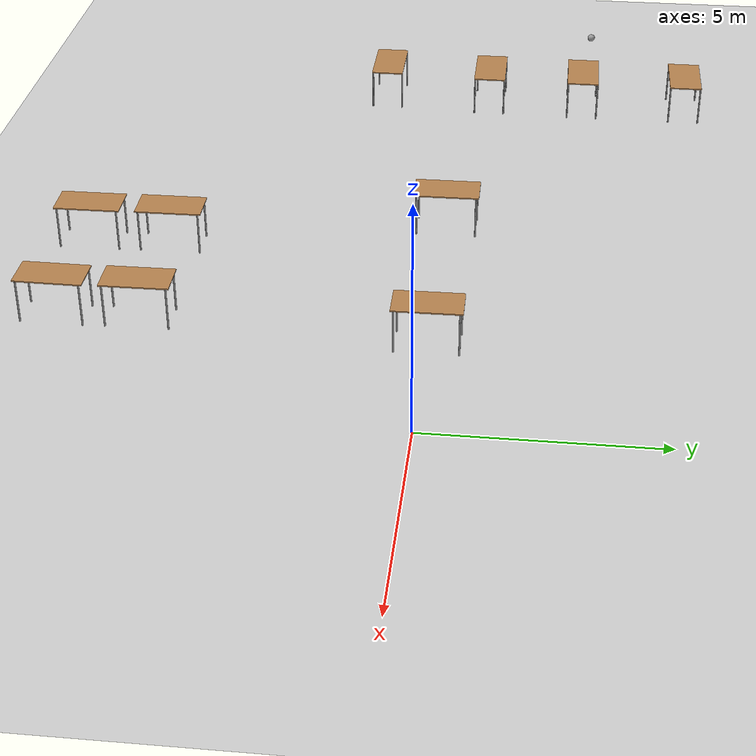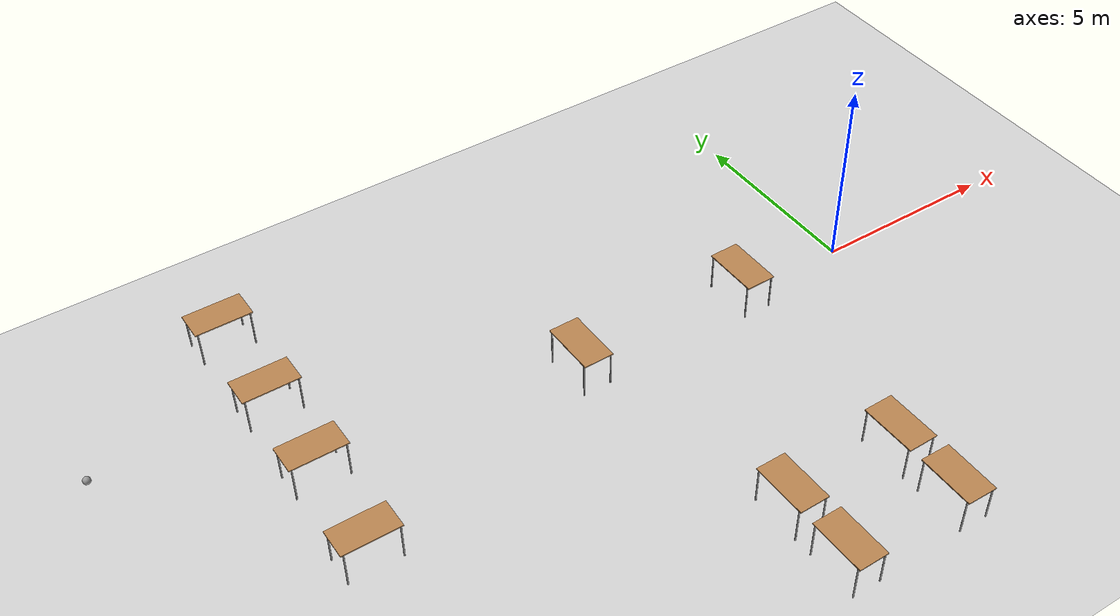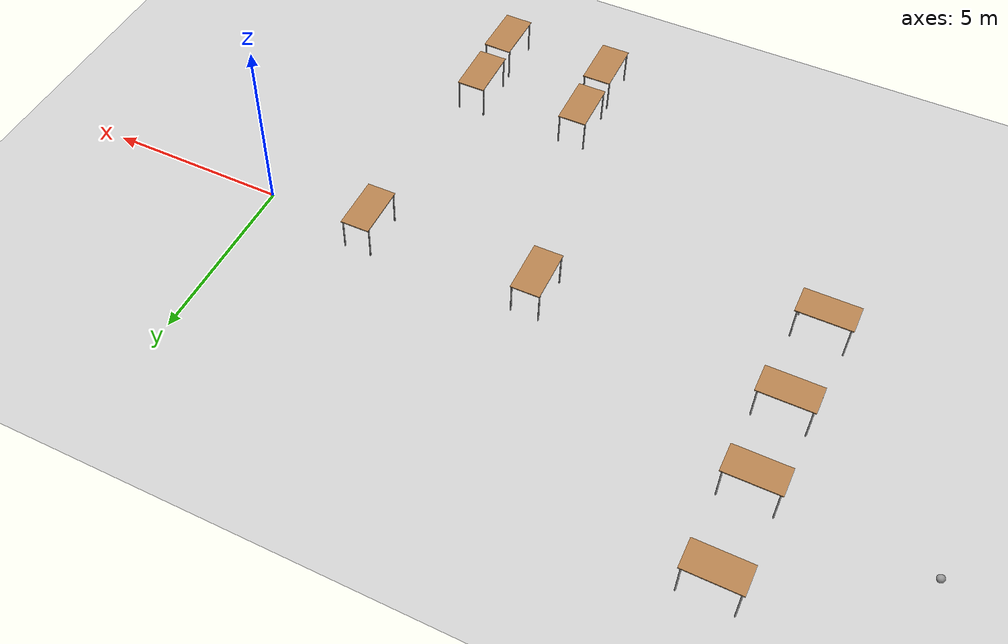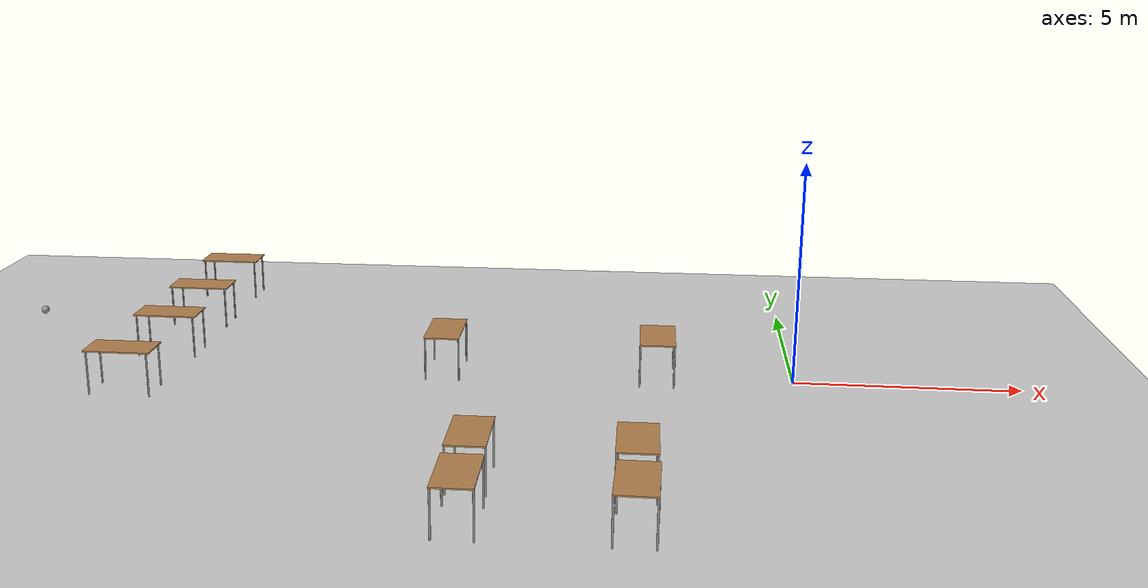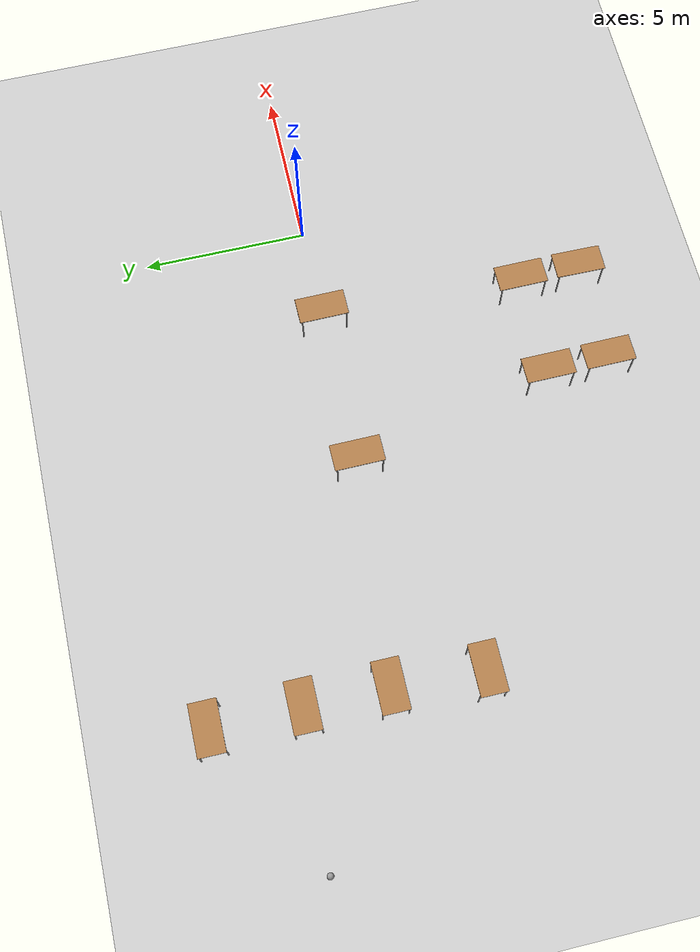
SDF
<sdf version="1.7">
 <world name="default">
  <model name="ground_plane">
   <static>1</static>
   <link name="link">
    <collision name="collision">
     <geometry><plane><normal>0 0 1</normal><size>100 100</size></plane></geometry>
     <surface><friction><ode><mu>100</mu><mu2>50</mu2></ode></friction></surface>
    </collision>
    <visual name="visual">
     <cast_shadows>0</cast_shadows>
     <geometry><plane><normal>0 0 1</normal><size>100 100</size></plane></geometry>
     <material>
      <script><uri>file://media/materials/scripts/gazebo.material</uri><name>Gazebo/Grey</name></script>
     </material>
    </visual>
   </link>
  </model>
  <model name="table">
   <static>1</static>
   <link name="link">
    <collision name="surface">
     <pose>0 0 1 0 -0 0</pose>
     <geometry><box><size>1.5 0.8 0.03</size></box></geometry>
     <surface><friction><ode><mu>0.6</mu><mu2>0.6</mu2></ode></friction></surface>
    </collision>
    <visual name="visual1">
     <pose>0 0 1 0 -0 0</pose>
     <geometry><box><size>1.5 0.8 0.03</size></box></geometry>
     <material>
      <script><uri>file://media/materials/scripts/gazebo.material</uri><name>Gazebo/Wood</name></script>
     </material>
    </visual>
    <collision name="front_left_leg">
     <pose>0.68 0.38 0.5 0 -0 0</pose>
     <geometry><cylinder><radius>0.02</radius><length>1</length></cylinder></geometry>
    </collision>
    <visual name="front_left_leg">
     <pose>0.68 0.38 0.5 0 -0 0</pose>
     <geometry><cylinder><radius>0.02</radius><length>1</length></cylinder></geometry>
     <material>
      <script><uri>file://media/materials/scripts/gazebo.material</uri><name>Gazebo/Grey</name></script>
     </material>
    </visual>
    <collision name="front_right_leg">
     <pose>0.68 -0.38 0.5 0 -0 0</pose>
     <geometry><cylinder><radius>0.02</radius><length>1</length></cylinder></geometry>
    </collision>
    <visual name="front_right_leg">
     <pose>0.68 -0.38 0.5 0 -0 0</pose>
     <geometry><cylinder><radius>0.02</radius><length>1</length></cylinder></geometry>
     <material>
      <script><uri>file://media/materials/scripts/gazebo.material</uri><name>Gazebo/Grey</name></script>
     </material>
    </visual>
    <collision name="back_right_leg">
     <pose>-0.68 -0.38 0.5 0 -0 0</pose>
     <geometry><cylinder><radius>0.02</radius><length>1</length></cylinder></geometry>
    </collision>
    <visual name="back_right_leg">
     <pose>-0.68 -0.38 0.5 0 -0 0</pose>
     <geometry><cylinder><radius>0.02</radius><length>1</length></cylinder></geometry>
     <material>
      <script><uri>file://media/materials/scripts/gazebo.material</uri><name>Gazebo/Grey</name></script>
     </material>
    </visual>
    <collision name="back_left_leg">
     <pose>-0.68 0.38 0.5 0 -0 0</pose>
     <geometry><cylinder><radius>0.02</radius><length>1</length></cylinder></geometry>
    </collision>
    <visual name="back_left_leg">
     <pose>-0.68 0.38 0.5 0 -0 0</pose>
     <geometry><cylinder><radius>0.02</radius><length>1</length></cylinder></geometry>
     <material>
      <script><uri>file://media/materials/scripts/gazebo.material</uri><name>Gazebo/Grey</name></script>
     </material>
    </visual>
   </link>
   <pose>-14.64 5.75533 0 0 -0 0</pose>
  </model>
  <model name="table_clone">
   <static>1</static>
   <link name="link">
    <collision name="surface">
     <pose>0 0 1 0 -0 0</pose>
     <geometry><box><size>1.5 0.8 0.03</size></box></geometry>
     <surface><friction><ode><mu>0.6</mu><mu2>0.6</mu2></ode></friction></surface>
    </collision>
    <visual name="visual1">
     <pose>0 0 1 0 -0 0</pose>
     <geometry><box><size>1.5 0.8 0.03</size></box></geometry>
     <material>
      <script><uri>file://media/materials/scripts/gazebo.material</uri><name>Gazebo/Wood</name></script>
     </material>
    </visual>
    <collision name="front_left_leg">
     <pose>0.68 0.38 0.5 0 -0 0</pose>
     <geometry><cylinder><radius>0.02</radius><length>1</length></cylinder></geometry>
    </collision>
    <visual name="front_left_leg">
     <pose>0.68 0.38 0.5 0 -0 0</pose>
     <geometry><cylinder><radius>0.02</radius><length>1</length></cylinder></geometry>
     <material>
      <script><uri>file://media/materials/scripts/gazebo.material</uri><name>Gazebo/Grey</name></script>
     </material>
    </visual>
    <collision name="front_right_leg">
     <pose>0.68 -0.38 0.5 0 -0 0</pose>
     <geometry><cylinder><radius>0.02</radius><length>1</length></cylinder></geometry>
    </collision>
    <visual name="front_right_leg">
     <pose>0.68 -0.38 0.5 0 -0 0</pose>
     <geometry><cylinder><radius>0.02</radius><length>1</length></cylinder></geometry>
     <material>
      <script><uri>file://media/materials/scripts/gazebo.material</uri><name>Gazebo/Grey</name></script>
     </material>
    </visual>
    <collision name="back_right_leg">
     <pose>-0.68 -0.38 0.5 0 -0 0</pose>
     <geometry><cylinder><radius>0.02</radius><length>1</length></cylinder></geometry>
    </collision>
    <visual name="back_right_leg">
     <pose>-0.68 -0.38 0.5 0 -0 0</pose>
     <geometry><cylinder><radius>0.02</radius><length>1</length></cylinder></geometry>
     <material>
      <script><uri>file://media/materials/scripts/gazebo.material</uri><name>Gazebo/Grey</name></script>
     </material>
    </visual>
    <collision name="back_left_leg">
     <pose>-0.68 0.38 0.5 0 -0 0</pose>
     <geometry><cylinder><radius>0.02</radius><length>1</length></cylinder></geometry>
    </collision>
    <visual name="back_left_leg">
     <pose>-0.68 0.38 0.5 0 -0 0</pose>
     <geometry><cylinder><radius>0.02</radius><length>1</length></cylinder></geometry>
     <material>
      <script><uri>file://media/materials/scripts/gazebo.material</uri><name>Gazebo/Grey</name></script>
     </material>
    </visual>
   </link>
   <pose>-14.6419 3.11969 0 0 -0 0</pose>
  </model>
  <model name="table_clone_0">
   <static>1</static>
   <link name="link">
    <collision name="surface">
     <pose>0 0 1 0 -0 0</pose>
     <geometry><box><size>1.5 0.8 0.03</size></box></geometry>
     <surface><friction><ode><mu>0.6</mu><mu2>0.6</mu2></ode></friction></surface>
    </collision>
    <visual name="visual1">
     <pose>0 0 1 0 -0 0</pose>
     <geometry><box><size>1.5 0.8 0.03</size></box></geometry>
     <material>
      <script><uri>file://media/materials/scripts/gazebo.material</uri><name>Gazebo/Wood</name></script>
     </material>
    </visual>
    <collision name="front_left_leg">
     <pose>0.68 0.38 0.5 0 -0 0</pose>
     <geometry><cylinder><radius>0.02</radius><length>1</length></cylinder></geometry>
    </collision>
    <visual name="front_left_leg">
     <pose>0.68 0.38 0.5 0 -0 0</pose>
     <geometry><cylinder><radius>0.02</radius><length>1</length></cylinder></geometry>
     <material>
      <script><uri>file://media/materials/scripts/gazebo.material</uri><name>Gazebo/Grey</name></script>
     </material>
    </visual>
    <collision name="front_right_leg">
     <pose>0.68 -0.38 0.5 0 -0 0</pose>
     <geometry><cylinder><radius>0.02</radius><length>1</length></cylinder></geometry>
    </collision>
    <visual name="front_right_leg">
     <pose>0.68 -0.38 0.5 0 -0 0</pose>
     <geometry><cylinder><radius>0.02</radius><length>1</length></cylinder></geometry>
     <material>
      <script><uri>file://media/materials/scripts/gazebo.material</uri><name>Gazebo/Grey</name></script>
     </material>
    </visual>
    <collision name="back_right_leg">
     <pose>-0.68 -0.38 0.5 0 -0 0</pose>
     <geometry><cylinder><radius>0.02</radius><length>1</length></cylinder></geometry>
    </collision>
    <visual name="back_right_leg">
     <pose>-0.68 -0.38 0.5 0 -0 0</pose>
     <geometry><cylinder><radius>0.02</radius><length>1</length></cylinder></geometry>
     <material>
      <script><uri>file://media/materials/scripts/gazebo.material</uri><name>Gazebo/Grey</name></script>
     </material>
    </visual>
    <collision name="back_left_leg">
     <pose>-0.68 0.38 0.5 0 -0 0</pose>
     <geometry><cylinder><radius>0.02</radius><length>1</length></cylinder></geometry>
    </collision>
    <visual name="back_left_leg">
     <pose>-0.68 0.38 0.5 0 -0 0</pose>
     <geometry><cylinder><radius>0.02</radius><length>1</length></cylinder></geometry>
     <material>
      <script><uri>file://media/materials/scripts/gazebo.material</uri><name>Gazebo/Grey</name></script>
     </material>
    </visual>
   </link>
   <pose>-14.6602 0.691653 0 0 -0 0</pose>
  </model>
  <model name="table_clone_1">
   <static>1</static>
   <link name="link">
    <collision name="surface">
     <pose>0 0 1 0 -0 0</pose>
     <geometry><box><size>1.5 0.8 0.03</size></box></geometry>
     <surface><friction><ode><mu>0.6</mu><mu2>0.6</mu2></ode></friction></surface>
    </collision>
    <visual name="visual1">
     <pose>0 0 1 0 -0 0</pose>
     <geometry><box><size>1.5 0.8 0.03</size></box></geometry>
     <material>
      <script><uri>file://media/materials/scripts/gazebo.material</uri><name>Gazebo/Wood</name></script>
     </material>
    </visual>
    <collision name="front_left_leg">
     <pose>0.68 0.38 0.5 0 -0 0</pose>
     <geometry><cylinder><radius>0.02</radius><length>1</length></cylinder></geometry>
    </collision>
    <visual name="front_left_leg">
     <pose>0.68 0.38 0.5 0 -0 0</pose>
     <geometry><cylinder><radius>0.02</radius><length>1</length></cylinder></geometry>
     <material>
      <script><uri>file://media/materials/scripts/gazebo.material</uri><name>Gazebo/Grey</name></script>
     </material>
    </visual>
    <collision name="front_right_leg">
     <pose>0.68 -0.38 0.5 0 -0 0</pose>
     <geometry><cylinder><radius>0.02</radius><length>1</length></cylinder></geometry>
    </collision>
    <visual name="front_right_leg">
     <pose>0.68 -0.38 0.5 0 -0 0</pose>
     <geometry><cylinder><radius>0.02</radius><length>1</length></cylinder></geometry>
     <material>
      <script><uri>file://media/materials/scripts/gazebo.material</uri><name>Gazebo/Grey</name></script>
     </material>
    </visual>
    <collision name="back_right_leg">
     <pose>-0.68 -0.38 0.5 0 -0 0</pose>
     <geometry><cylinder><radius>0.02</radius><length>1</length></cylinder></geometry>
    </collision>
    <visual name="back_right_leg">
     <pose>-0.68 -0.38 0.5 0 -0 0</pose>
     <geometry><cylinder><radius>0.02</radius><length>1</length></cylinder></geometry>
     <material>
      <script><uri>file://media/materials/scripts/gazebo.material</uri><name>Gazebo/Grey</name></script>
     </material>
    </visual>
    <collision name="back_left_leg">
     <pose>-0.68 0.38 0.5 0 -0 0</pose>
     <geometry><cylinder><radius>0.02</radius><length>1</length></cylinder></geometry>
    </collision>
    <visual name="back_left_leg">
     <pose>-0.68 0.38 0.5 0 -0 0</pose>
     <geometry><cylinder><radius>0.02</radius><length>1</length></cylinder></geometry>
     <material>
      <script><uri>file://media/materials/scripts/gazebo.material</uri><name>Gazebo/Grey</name></script>
     </material>
    </visual>
   </link>
   <pose>-14.7946 -2.00538 0 0 -0 0</pose>
  </model>
  <model name="table_clone_2">
   <static>1</static>
   <link name="link">
    <collision name="surface">
     <pose>0 0 1 0 -0 0</pose>
     <geometry><box><size>1.5 0.8 0.03</size></box></geometry>
     <surface><friction><ode><mu>0.6</mu><mu2>0.6</mu2></ode></friction></surface>
    </collision>
    <visual name="visual1">
     <pose>0 0 1 0 -0 0</pose>
     <geometry><box><size>1.5 0.8 0.03</size></box></geometry>
     <material>
      <script><uri>file://media/materials/scripts/gazebo.material</uri><name>Gazebo/Wood</name></script>
     </material>
    </visual>
    <collision name="front_left_leg">
     <pose>0.68 0.38 0.5 0 -0 0</pose>
     <geometry><cylinder><radius>0.02</radius><length>1</length></cylinder></geometry>
    </collision>
    <visual name="front_left_leg">
     <pose>0.68 0.38 0.5 0 -0 0</pose>
     <geometry><cylinder><radius>0.02</radius><length>1</length></cylinder></geometry>
     <material>
      <script><uri>file://media/materials/scripts/gazebo.material</uri><name>Gazebo/Grey</name></script>
     </material>
    </visual>
    <collision name="front_right_leg">
     <pose>0.68 -0.38 0.5 0 -0 0</pose>
     <geometry><cylinder><radius>0.02</radius><length>1</length></cylinder></geometry>
    </collision>
    <visual name="front_right_leg">
     <pose>0.68 -0.38 0.5 0 -0 0</pose>
     <geometry><cylinder><radius>0.02</radius><length>1</length></cylinder></geometry>
     <material>
      <script><uri>file://media/materials/scripts/gazebo.material</uri><name>Gazebo/Grey</name></script>
     </material>
    </visual>
    <collision name="back_right_leg">
     <pose>-0.68 -0.38 0.5 0 -0 0</pose>
     <geometry><cylinder><radius>0.02</radius><length>1</length></cylinder></geometry>
    </collision>
    <visual name="back_right_leg">
     <pose>-0.68 -0.38 0.5 0 -0 0</pose>
     <geometry><cylinder><radius>0.02</radius><length>1</length></cylinder></geometry>
     <material>
      <script><uri>file://media/materials/scripts/gazebo.material</uri><name>Gazebo/Grey</name></script>
     </material>
    </visual>
    <collision name="back_left_leg">
     <pose>-0.68 0.38 0.5 0 -0 0</pose>
     <geometry><cylinder><radius>0.02</radius><length>1</length></cylinder></geometry>
    </collision>
    <visual name="back_left_leg">
     <pose>-0.68 0.38 0.5 0 -0 0</pose>
     <geometry><cylinder><radius>0.02</radius><length>1</length></cylinder></geometry>
     <material>
      <script><uri>file://media/materials/scripts/gazebo.material</uri><name>Gazebo/Grey</name></script>
     </material>
    </visual>
   </link>
   <pose>-6.48162 -7.94294 0 0 0 -1.56333</pose>
  </model>
  <model name="table_clone_3">
   <static>1</static>
   <link name="link">
    <collision name="surface">
     <pose>0 0 1 0 -0 0</pose>
     <geometry><box><size>1.5 0.8 0.03</size></box></geometry>
     <surface><friction><ode><mu>0.6</mu><mu2>0.6</mu2></ode></friction></surface>
    </collision>
    <visual name="visual1">
     <pose>0 0 1 0 -0 0</pose>
     <geometry><box><size>1.5 0.8 0.03</size></box></geometry>
     <material>
      <script><uri>file://media/materials/scripts/gazebo.material</uri><name>Gazebo/Wood</name></script>
     </material>
    </visual>
    <collision name="front_left_leg">
     <pose>0.68 0.38 0.5 0 -0 0</pose>
     <geometry><cylinder><radius>0.02</radius><length>1</length></cylinder></geometry>
    </collision>
    <visual name="front_left_leg">
     <pose>0.68 0.38 0.5 0 -0 0</pose>
     <geometry><cylinder><radius>0.02</radius><length>1</length></cylinder></geometry>
     <material>
      <script><uri>file://media/materials/scripts/gazebo.material</uri><name>Gazebo/Grey</name></script>
     </material>
    </visual>
    <collision name="front_right_leg">
     <pose>0.68 -0.38 0.5 0 -0 0</pose>
     <geometry><cylinder><radius>0.02</radius><length>1</length></cylinder></geometry>
    </collision>
    <visual name="front_right_leg">
     <pose>0.68 -0.38 0.5 0 -0 0</pose>
     <geometry><cylinder><radius>0.02</radius><length>1</length></cylinder></geometry>
     <material>
      <script><uri>file://media/materials/scripts/gazebo.material</uri><name>Gazebo/Grey</name></script>
     </material>
    </visual>
    <collision name="back_right_leg">
     <pose>-0.68 -0.38 0.5 0 -0 0</pose>
     <geometry><cylinder><radius>0.02</radius><length>1</length></cylinder></geometry>
    </collision>
    <visual name="back_right_leg">
     <pose>-0.68 -0.38 0.5 0 -0 0</pose>
     <geometry><cylinder><radius>0.02</radius><length>1</length></cylinder></geometry>
     <material>
      <script><uri>file://media/materials/scripts/gazebo.material</uri><name>Gazebo/Grey</name></script>
     </material>
    </visual>
    <collision name="back_left_leg">
     <pose>-0.68 0.38 0.5 0 -0 0</pose>
     <geometry><cylinder><radius>0.02</radius><length>1</length></cylinder></geometry>
    </collision>
    <visual name="back_left_leg">
     <pose>-0.68 0.38 0.5 0 -0 0</pose>
     <geometry><cylinder><radius>0.02</radius><length>1</length></cylinder></geometry>
     <material>
      <script><uri>file://media/materials/scripts/gazebo.material</uri><name>Gazebo/Grey</name></script>
     </material>
    </visual>
   </link>
   <pose>-3.36222 -7.92805 0 0 0 -1.58523</pose>
  </model>
  <model name="table_clone_5_clone_1">
   <static>1</static>
   <link name="link">
    <collision name="surface">
     <pose>0 0 1 0 -0 0</pose>
     <geometry><box><size>1.5 0.8 0.03</size></box></geometry>
     <surface><friction><ode><mu>0.6</mu><mu2>0.6</mu2></ode></friction></surface>
    </collision>
    <visual name="visual1">
     <pose>0 0 1 0 -0 0</pose>
     <geometry><box><size>1.5 0.8 0.03</size></box></geometry>
     <material>
      <script><uri>file://media/materials/scripts/gazebo.material</uri><name>Gazebo/Wood</name></script>
     </material>
    </visual>
    <collision name="front_left_leg">
     <pose>0.68 0.38 0.5 0 -0 0</pose>
     <geometry><cylinder><radius>0.02</radius><length>1</length></cylinder></geometry>
    </collision>
    <visual name="front_left_leg">
     <pose>0.68 0.38 0.5 0 -0 0</pose>
     <geometry><cylinder><radius>0.02</radius><length>1</length></cylinder></geometry>
     <material>
      <script><uri>file://media/materials/scripts/gazebo.material</uri><name>Gazebo/Grey</name></script>
     </material>
    </visual>
    <collision name="front_right_leg">
     <pose>0.68 -0.38 0.5 0 -0 0</pose>
     <geometry><cylinder><radius>0.02</radius><length>1</length></cylinder></geometry>
    </collision>
    <visual name="front_right_leg">
     <pose>0.68 -0.38 0.5 0 -0 0</pose>
     <geometry><cylinder><radius>0.02</radius><length>1</length></cylinder></geometry>
     <material>
      <script><uri>file://media/materials/scripts/gazebo.material</uri><name>Gazebo/Grey</name></script>
     </material>
    </visual>
    <collision name="back_right_leg">
     <pose>-0.68 -0.38 0.5 0 -0 0</pose>
     <geometry><cylinder><radius>0.02</radius><length>1</length></cylinder></geometry>
    </collision>
    <visual name="back_right_leg">
     <pose>-0.68 -0.38 0.5 0 -0 0</pose>
     <geometry><cylinder><radius>0.02</radius><length>1</length></cylinder></geometry>
     <material>
      <script><uri>file://media/materials/scripts/gazebo.material</uri><name>Gazebo/Grey</name></script>
     </material>
    </visual>
    <collision name="back_left_leg">
     <pose>-0.68 0.38 0.5 0 -0 0</pose>
     <geometry><cylinder><radius>0.02</radius><length>1</length></cylinder></geometry>
    </collision>
    <visual name="back_left_leg">
     <pose>-0.68 0.38 0.5 0 -0 0</pose>
     <geometry><cylinder><radius>0.02</radius><length>1</length></cylinder></geometry>
     <material>
      <script><uri>file://media/materials/scripts/gazebo.material</uri><name>Gazebo/Grey</name></script>
     </material>
    </visual>
   </link>
   <pose>-3.38591 -6.10217 0 0 0 -1.56324</pose>
  </model>
  <model name="table_clone_5_clone_2">
   <static>1</static>
   <link name="link">
    <collision name="surface">
     <pose>0 0 1 0 -0 0</pose>
     <geometry><box><size>1.5 0.8 0.03</size></box></geometry>
     <surface><friction><ode><mu>0.6</mu><mu2>0.6</mu2></ode></friction></surface>
    </collision>
    <visual name="visual1">
     <pose>0 0 1 0 -0 0</pose>
     <geometry><box><size>1.5 0.8 0.03</size></box></geometry>
     <material>
      <script><uri>file://media/materials/scripts/gazebo.material</uri><name>Gazebo/Wood</name></script>
     </material>
    </visual>
    <collision name="front_left_leg">
     <pose>0.68 0.38 0.5 0 -0 0</pose>
     <geometry><cylinder><radius>0.02</radius><length>1</length></cylinder></geometry>
    </collision>
    <visual name="front_left_leg">
     <pose>0.68 0.38 0.5 0 -0 0</pose>
     <geometry><cylinder><radius>0.02</radius><length>1</length></cylinder></geometry>
     <material>
      <script><uri>file://media/materials/scripts/gazebo.material</uri><name>Gazebo/Grey</name></script>
     </material>
    </visual>
    <collision name="front_right_leg">
     <pose>0.68 -0.38 0.5 0 -0 0</pose>
     <geometry><cylinder><radius>0.02</radius><length>1</length></cylinder></geometry>
    </collision>
    <visual name="front_right_leg">
     <pose>0.68 -0.38 0.5 0 -0 0</pose>
     <geometry><cylinder><radius>0.02</radius><length>1</length></cylinder></geometry>
     <material>
      <script><uri>file://media/materials/scripts/gazebo.material</uri><name>Gazebo/Grey</name></script>
     </material>
    </visual>
    <collision name="back_right_leg">
     <pose>-0.68 -0.38 0.5 0 -0 0</pose>
     <geometry><cylinder><radius>0.02</radius><length>1</length></cylinder></geometry>
    </collision>
    <visual name="back_right_leg">
     <pose>-0.68 -0.38 0.5 0 -0 0</pose>
     <geometry><cylinder><radius>0.02</radius><length>1</length></cylinder></geometry>
     <material>
      <script><uri>file://media/materials/scripts/gazebo.material</uri><name>Gazebo/Grey</name></script>
     </material>
    </visual>
    <collision name="back_left_leg">
     <pose>-0.68 0.38 0.5 0 -0 0</pose>
     <geometry><cylinder><radius>0.02</radius><length>1</length></cylinder></geometry>
    </collision>
    <visual name="back_left_leg">
     <pose>-0.68 0.38 0.5 0 -0 0</pose>
     <geometry><cylinder><radius>0.02</radius><length>1</length></cylinder></geometry>
     <material>
      <script><uri>file://media/materials/scripts/gazebo.material</uri><name>Gazebo/Grey</name></script>
     </material>
    </visual>
   </link>
   <pose>-6.51259 -6.09178 0 0 0 -1.56324</pose>
  </model>
  <model name="table_clone_5_clone_clone_clone_2">
   <static>1</static>
   <link name="link">
    <collision name="surface">
     <pose>0 0 1 0 -0 0</pose>
     <geometry><box><size>1.5 0.8 0.03</size></box></geometry>
     <surface><friction><ode><mu>0.6</mu><mu2>0.6</mu2></ode></friction></surface>
    </collision>
    <visual name="visual1">
     <pose>0 0 1 0 -0 0</pose>
     <geometry><box><size>1.5 0.8 0.03</size></box></geometry>
     <material>
      <script><uri>file://media/materials/scripts/gazebo.material</uri><name>Gazebo/Wood</name></script>
     </material>
    </visual>
    <collision name="front_left_leg">
     <pose>0.68 0.38 0.5 0 -0 0</pose>
     <geometry><cylinder><radius>0.02</radius><length>1</length></cylinder></geometry>
    </collision>
    <visual name="front_left_leg">
     <pose>0.68 0.38 0.5 0 -0 0</pose>
     <geometry><cylinder><radius>0.02</radius><length>1</length></cylinder></geometry>
     <material>
      <script><uri>file://media/materials/scripts/gazebo.material</uri><name>Gazebo/Grey</name></script>
     </material>
    </visual>
    <collision name="front_right_leg">
     <pose>0.68 -0.38 0.5 0 -0 0</pose>
     <geometry><cylinder><radius>0.02</radius><length>1</length></cylinder></geometry>
    </collision>
    <visual name="front_right_leg">
     <pose>0.68 -0.38 0.5 0 -0 0</pose>
     <geometry><cylinder><radius>0.02</radius><length>1</length></cylinder></geometry>
     <material>
      <script><uri>file://media/materials/scripts/gazebo.material</uri><name>Gazebo/Grey</name></script>
     </material>
    </visual>
    <collision name="back_right_leg">
     <pose>-0.68 -0.38 0.5 0 -0 0</pose>
     <geometry><cylinder><radius>0.02</radius><length>1</length></cylinder></geometry>
    </collision>
    <visual name="back_right_leg">
     <pose>-0.68 -0.38 0.5 0 -0 0</pose>
     <geometry><cylinder><radius>0.02</radius><length>1</length></cylinder></geometry>
     <material>
      <script><uri>file://media/materials/scripts/gazebo.material</uri><name>Gazebo/Grey</name></script>
     </material>
    </visual>
    <collision name="back_left_leg">
     <pose>-0.68 0.38 0.5 0 -0 0</pose>
     <geometry><cylinder><radius>0.02</radius><length>1</length></cylinder></geometry>
    </collision>
    <visual name="back_left_leg">
     <pose>-0.68 0.38 0.5 0 -0 0</pose>
     <geometry><cylinder><radius>0.02</radius><length>1</length></cylinder></geometry>
     <material>
      <script><uri>file://media/materials/scripts/gazebo.material</uri><name>Gazebo/Grey</name></script>
     </material>
    </visual>
   </link>
   <pose>-3.05876 0.036965 0 0 0 -1.56324</pose>
  </model>
  <model name="table_clone_5_clone_clone_clone_3">
   <static>1</static>
   <link name="link">
    <collision name="surface">
     <pose>0 0 1 0 -0 0</pose>
     <geometry><box><size>1.5 0.8 0.03</size></box></geometry>
     <surface><friction><ode><mu>0.6</mu><mu2>0.6</mu2></ode></friction></surface>
    </collision>
    <visual name="visual1">
     <pose>0 0 1 0 -0 0</pose>
     <geometry><box><size>1.5 0.8 0.03</size></box></geometry>
     <material>
      <script><uri>file://media/materials/scripts/gazebo.material</uri><name>Gazebo/Wood</name></script>
     </material>
    </visual>
    <collision name="front_left_leg">
     <pose>0.68 0.38 0.5 0 -0 0</pose>
     <geometry><cylinder><radius>0.02</radius><length>1</length></cylinder></geometry>
    </collision>
    <visual name="front_left_leg">
     <pose>0.68 0.38 0.5 0 -0 0</pose>
     <geometry><cylinder><radius>0.02</radius><length>1</length></cylinder></geometry>
     <material>
      <script><uri>file://media/materials/scripts/gazebo.material</uri><name>Gazebo/Grey</name></script>
     </material>
    </visual>
    <collision name="front_right_leg">
     <pose>0.68 -0.38 0.5 0 -0 0</pose>
     <geometry><cylinder><radius>0.02</radius><length>1</length></cylinder></geometry>
    </collision>
    <visual name="front_right_leg">
     <pose>0.68 -0.38 0.5 0 -0 0</pose>
     <geometry><cylinder><radius>0.02</radius><length>1</length></cylinder></geometry>
     <material>
      <script><uri>file://media/materials/scripts/gazebo.material</uri><name>Gazebo/Grey</name></script>
     </material>
    </visual>
    <collision name="back_right_leg">
     <pose>-0.68 -0.38 0.5 0 -0 0</pose>
     <geometry><cylinder><radius>0.02</radius><length>1</length></cylinder></geometry>
    </collision>
    <visual name="back_right_leg">
     <pose>-0.68 -0.38 0.5 0 -0 0</pose>
     <geometry><cylinder><radius>0.02</radius><length>1</length></cylinder></geometry>
     <material>
      <script><uri>file://media/materials/scripts/gazebo.material</uri><name>Gazebo/Grey</name></script>
     </material>
    </visual>
    <collision name="back_left_leg">
     <pose>-0.68 0.38 0.5 0 -0 0</pose>
     <geometry><cylinder><radius>0.02</radius><length>1</length></cylinder></geometry>
    </collision>
    <visual name="back_left_leg">
     <pose>-0.68 0.38 0.5 0 -0 0</pose>
     <geometry><cylinder><radius>0.02</radius><length>1</length></cylinder></geometry>
     <material>
      <script><uri>file://media/materials/scripts/gazebo.material</uri><name>Gazebo/Grey</name></script>
     </material>
    </visual>
   </link>
   <pose>-7.89536 0.053453 0 0 0 -1.56324</pose>
  </model>
  <model name="ball">
   <link name="link_0">
    <inertial>
     <mass>1</mass>
     <inertia><ixx>0.1</ixx><ixy>0</ixy><ixz>0</ixz><iyy>0.1</iyy><iyz>0</iyz><izz>0.1</izz></inertia>
    </inertial>
    <visual name="visual">
     <geometry><sphere><radius>0.1</radius></sphere></geometry>
     <material>
      <lighting>1</lighting>
      <script><uri>file://media/materials/scripts/gazebo.material</uri><name>Gazebo/Grey</name></script>
      <shader type="pixel"><normal_map>__default__</normal_map></shader>
      <ambient>1 1 1 1</ambient>
      <diffuse>0.7 0.7 0.7 1</diffuse>
      <specular>0.01 0.01 0.01 1</specular>
      <emissive>0 0 0 1</emissive>
     </material>
    </visual>
    <collision name="collision">
     <geometry><sphere><radius>0.1</radius></sphere></geometry>
     <surface>
      <friction>
       <ode><mu>1</mu><mu2>1</mu2><fdir1>0 0 0</fdir1><slip1>0</slip1><slip2>0</slip2></ode>
       <torsional>
        <coefficient>1</coefficient>
        <patch_radius>0</patch_radius>
        <surface_radius>0</surface_radius>
        <use_patch_radius>1</use_patch_radius>
        <ode><slip>0</slip></ode>
       </torsional>
      </friction>
      <bounce><restitution_coefficient>0</restitution_coefficient><threshold>1e+06</threshold></bounce>
      <contact>
       <collide_without_contact>0</collide_without_contact>
       <collide_without_contact_bitmask>1</collide_without_contact_bitmask>
       <collide_bitmask>1</collide_bitmask>
       <ode>
        <soft_cfm>0</soft_cfm>
        <soft_erp>0.2</soft_erp>
        <kp>1e+13</kp>
        <kd>1</kd>
        <max_vel>0.01</max_vel>
        <min_depth>0</min_depth>
       </ode>
       <bullet>
        <split_impulse>1</split_impulse>
        <split_impulse_penetration_threshold>-0.01</split_impulse_penetration_threshold>
        <soft_cfm>0</soft_cfm>
        <soft_erp>0.2</soft_erp>
        <kp>1e+13</kp>
        <kd>1</kd>
       </bullet>
      </contact>
     </surface>
    </collision>
   </link>
   <static>0</static>
   <pose>-19.0342 3.36921 0.1 0 -0 0</pose>
  </model>
 </world>
</sdf>
